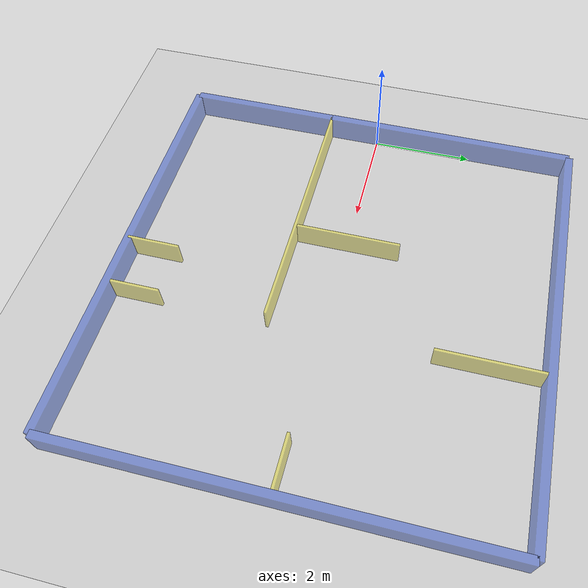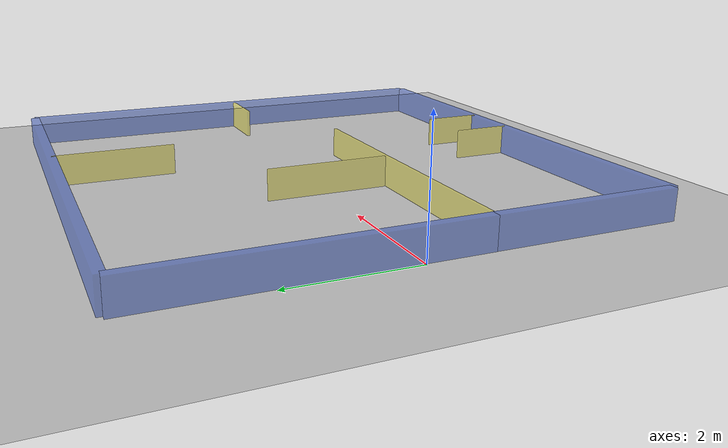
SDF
<?xml version="1.0"?>
<sdf version="1.6">
    <world name="default">

        <include>
            <uri>model://ground_plane</uri>
        </include>

        <include>
            <uri>model://sun</uri>
        </include>

        <scene>
            <shadows>false</shadows>
        </scene>

        <gui fullscreen='0'>
            <camera name='user_camera'>
                <pose>-6.72541 3.54974 7.99303 0 0.669799 -0.434418</pose>
                <view_controller>orbit</view_controller>
                <projection_type>perspective</projection_type>
            </camera>
        </gui>

        <physics type="ode">
            <real_time_update_rate>1000.0</real_time_update_rate>
            <max_step_size>0.001</max_step_size>
            <real_time_factor>1</real_time_factor>
            <ode>
                <solver>
                    <type>quick</type>
                    <iters>150</iters>
                    <precon_iters>0</precon_iters>
                    <sor>1.400000</sor>
                    <use_dynamic_moi_rescaling>1</use_dynamic_moi_rescaling>
                </solver>
                <constraints>
                    <cfm>0.00001</cfm>
                    <erp>0.2</erp>
                    <contact_max_correcting_vel>2000.000000</contact_max_correcting_vel>
                    <contact_surface_layer>0.01000</contact_surface_layer>
                </constraints>
            </ode>
        </physics>

        <model name='wall_1a'>
            <static>1</static>
            <pose>0 -2.5 0.3 0 -0 1.57</pose>
            <link name='link'>
                <collision name='collision'>
                    <geometry>
                        <box>
                            <size>3 0.15 0.5</size>
                        </box>
                    </geometry>
                    <max_contacts>10</max_contacts>
                </collision>

                <visual name='visual'>
                    <geometry>
                        <box>
                            <size>3 0.15 0.5</size>
                        </box>
                    </geometry>
                    <material>
                        <script>
                            <name>Gazebo/BlueTransparent </name>
                            <uri>file://media/materials/scripts/gazebo.material</uri>
                        </script>
                    </material>
                </visual>
                <self_collide>0</self_collide>
                <enable_wind>0</enable_wind>
                <kinematic>0</kinematic>
            </link>

        </model>

        <model name='wall_1b'>
            <static>1</static>
            <pose>0 1.5 0.3 0 -0 1.57</pose>
            <link name='link'>
                <collision name='collision'>
                    <geometry>
                        <box>
                            <size>5 0.15 0.5</size>
                        </box>
                    </geometry>
                    <max_contacts>10</max_contacts>
                </collision>
                <visual name='visual'>
                    <geometry>
                        <box>
                            <size>5 0.15 0.5</size>
                        </box>
                    </geometry>
                    <material>
                        <script>
                            <name>Gazebo/BlueTransparent </name>
                            <uri>file://media/materials/scripts/gazebo.material</uri>
                        </script>
                    </material>
                </visual>
                <self_collide>0</self_collide>
                <enable_wind>0</enable_wind>
                <kinematic>0</kinematic>
            </link>
        </model>

        <model name='wall_2'>
            <static>1</static>
            <pose>4 4 0.3 0 -0 0</pose>
            <link name='link'>
                <collision name='collision'>
                    <geometry>
                        <box>
                            <size>8 0.15 0.5</size>
                        </box>
                    </geometry>
                    <max_contacts>10</max_contacts>
                </collision>
                <visual name='visual'>
                    <geometry>
                        <box>
                            <size>8 0.15 0.5</size>
                        </box>
                    </geometry>
                    <material>
                        <script>
                            <name>Gazebo/BlueTransparent </name>
                            <uri>file://media/materials/scripts/gazebo.material</uri>
                        </script>
                    </material>
                </visual>
                <self_collide>0</self_collide>
                <enable_wind>0</enable_wind>
                <kinematic>0</kinematic>
            </link>
        </model>
        <model name='wall_3'>
            <static>1</static>
            <pose>8 0 0.3 0 -0 1.57</pose>
            <link name='link'>
                <collision name='collision'>
                    <geometry>
                        <box>
                            <size>8 0.15 0.5</size>
                        </box>
                    </geometry>
                    <max_contacts>10</max_contacts>
                </collision>
                <visual name='visual'>
                    <geometry>
                        <box>
                            <size>8 0.15 0.5</size>
                        </box>
                    </geometry>
                    <material>
                        <script>
                            <name>Gazebo/BlueTransparent </name>
                            <uri>file://media/materials/scripts/gazebo.material</uri>
                        </script>
                    </material>
                </visual>
                <self_collide>0</self_collide>
                <enable_wind>0</enable_wind>
                <kinematic>0</kinematic>
            </link>
        </model>

        <model name='wall_4'>
            <static>1</static>
            <pose>4 -4 0.3 0 -0 0</pose>
            <link name='link'>
                <collision name='collision'>
                    <geometry>
                        <box>
                            <size>8 0.15 0.5</size>
                        </box>
                    </geometry>
                    <max_contacts>10</max_contacts>
                </collision>
                <visual name='visual'>
                    <geometry>
                        <box>
                            <size>8 0.15 0.5</size>
                        </box>
                    </geometry>
                    <material>
                        <script>
                            <name>Gazebo/BlueTransparent </name>
                            <uri>file://media/materials/scripts/gazebo.material</uri>
                        </script>
                    </material>
                </visual>
                <self_collide>0</self_collide>
                <enable_wind>0</enable_wind>
                <kinematic>0</kinematic>
            </link>
        </model>

        <model name='wall_5'>
            <static>1</static>
            <pose>2.988018 0.036093 0.3 0 -0 1.57</pose>
            <link name='link'>
                <collision name='collision'>
                    <geometry>
                        <box>
                            <size>2 0.05 0.5</size>
                        </box>
                    </geometry>
                    <max_contacts>10</max_contacts>
                </collision>
                <visual name='visual'>
                    <geometry>
                        <box>
                            <size>2 0.05 0.5</size>
                        </box>
                    </geometry>
                    <material>
                        <script>
                            <name>Gazebo/YellowTransparent</name>
                            <uri>file://media/materials/scripts/gazebo.material</uri>
                        </script>
                    </material>
                </visual>
                <self_collide>0</self_collide>
                <enable_wind>0</enable_wind>
                <kinematic>0</kinematic>
            </link>
        </model>

        <model name='wall_6'>
            <static>1</static>
            <pose>2.5 -1 0.3 0 -0 0</pose>
            <link name='link'>
                <collision name='collision'>
                    <geometry>
                        <box>
                            <size>5 0.05 0.5</size>
                        </box>
                    </geometry>
                    <max_contacts>10</max_contacts>
                </collision>
                <visual name='visual'>
                    <geometry>
                        <box>
                            <size>5 0.05 0.5</size>
                        </box>
                    </geometry>
                    <material>
                        <script>
                            <name>Gazebo/YellowTransparent</name>
                            <uri>file://media/materials/scripts/gazebo.material</uri>
                        </script>
                    </material>
                </visual>
                <self_collide>0</self_collide>
                <enable_wind>0</enable_wind>
                <kinematic>0</kinematic>
            </link>
        </model>

        <model name='wall_7'>
            <static>1</static>
            <pose>5 3 0.3 0 -0 1.57</pose>
            <link name='link'>
                <collision name='collision'>
                    <geometry>
                        <box>
                            <size>2 0.05 0.5</size>
                        </box>
                    </geometry>
                    <max_contacts>10</max_contacts>
                </collision>
                <visual name='visual'>
                    <geometry>
                        <box>
                            <size>2 0.05 0.5</size>
                        </box>
                    </geometry>
                    <material>
                        <script>
                            <name>Gazebo/YellowTransparent </name>
                            <uri>file://media/materials/scripts/gazebo.material</uri>
                        </script>
                    </material>
                </visual>
                <self_collide>0</self_collide>
                <enable_wind>0</enable_wind>
                <kinematic>0</kinematic>
            </link>
        </model>

        <model name='wall_8'>
            <static>1</static>
            <pose>5 -3.5 0.3 0 -0 1.57</pose>
            <link name='link'>
                <collision name='collision'>
                    <geometry>
                        <box>
                            <size>1 0.05 0.5</size>
                        </box>
                    </geometry>
                    <max_contacts>10</max_contacts>
                </collision>
                <visual name='visual'>
                    <geometry>
                        <box>
                            <size>1 0.05 0.5</size>
                        </box>
                    </geometry>
                    <material>
                        <script>
                            <name>Gazebo/YellowTransparent </name>
                            <uri>file://media/materials/scripts/gazebo.material</uri>
                        </script>
                    </material>
                </visual>
                <self_collide>0</self_collide>
                <enable_wind>0</enable_wind>
                <kinematic>0</kinematic>
            </link>
        </model>

        <model name='wall_9'>
            <static>1</static>
            <pose>4 -3.5 0.3 0 -0 1.5707</pose>
            <link name='link'>
                <collision name='collision'>
                    <geometry>
                        <box>
                            <size>1 0.05 0.5</size>
                        </box>
                    </geometry>
                    <max_contacts>10</max_contacts>
                </collision>
                <visual name='visual'>
                    <geometry>
                        <box>
                            <size>1 0.05 0.5</size>
                        </box>
                    </geometry>
                    <material>
                        <script>
                            <name>Gazebo/YellowTransparent </name>
                            <uri>file://media/materials/scripts/gazebo.material</uri>
                        </script>
                    </material>
                </visual>
                <self_collide>0</self_collide>
                <enable_wind>0</enable_wind>
                <kinematic>0</kinematic>
            </link>
        </model>

        <model name='wall_10'>
            <static>1</static>
            <pose>7.5 0 0.3 0 -0 0</pose>
            <link name='link'>
                <collision name='collision'>
                    <geometry>
                        <box>
                            <size>1 0.05 0.5</size>
                        </box>
                    </geometry>
                    <max_contacts>10</max_contacts>
                </collision>
                <visual name='visual'>
                    <geometry>
                        <box>
                            <size>1 0.05 0.5</size>
                        </box>
                    </geometry>
                    <material>
                        <script>
                            <name>Gazebo/YellowTransparent </name>
                            <uri>file://media/materials/scripts/gazebo.material</uri>
                        </script>
                    </material>
                </visual>
                <self_collide>0</self_collide>
                <enable_wind>0</enable_wind>
                <kinematic>0</kinematic>
            </link>
        </model>

         </world>
</sdf>
